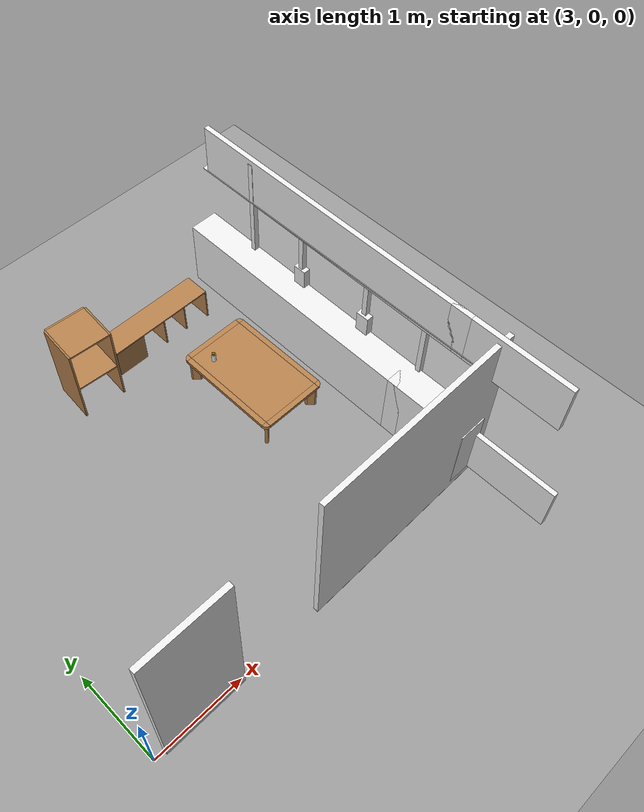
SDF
<sdf version="1.6">
 <world name="default">
  <model name="ground_plane">
   <static>1</static>
   <link name="link">
    <collision name="collision">
     <geometry><plane><normal>0 0 1</normal><size>100 100</size></plane></geometry>
     <surface><friction><ode><mu>100</mu><mu2>50</mu2></ode></friction></surface>
    </collision>
    <visual name="visual">
     <cast_shadows>0</cast_shadows>
     <geometry><plane><normal>0 0 1</normal><size>100 100</size></plane></geometry>
     <material>
      <script><uri>file://media/materials/scripts/gazebo.material</uri><name>Gazebo/Grey</name></script>
     </material>
    </visual>
   </link>
  </model>
  <model name="window">
   <link name="link">
    <pose>0 -1.45119 -0.459736 0 -0 0</pose>
    <inertial>
     <mass>74.704</mass>
     <inertia><ixx>0</ixx><ixy>0</ixy><ixz>0</ixz><iyy>0</iyy><iyz>0</iyz><izz>0</izz></inertia>
    </inertial>
    <velocity_decay><linear>0</linear><angular>0</angular></velocity_decay>
    <visual name="bottom_frame">
     <pose>0 0 0.05 0 -0 0</pose>
     <geometry><box><size>0.076062 3.6807 0.026221</size></box></geometry>
     <material>
      <script><uri>model://base_materials/color/scripts</uri><name>hsr_color/white</name></script>
      <ambient>1 1 1 1</ambient>
      <diffuse>0.5 0.5 0.5 1</diffuse>
      <specular>0 0 0 1</specular>
      <emissive>0 0 0 1</emissive>
     </material>
    </visual>
    <visual name="wall">
     <pose>0 0 0.4875 0 -0 0</pose>
     <geometry><box><size>0.076062 3.6807 0.209551</size></box></geometry>
     <material>
      <script>
       <uri>model://base_materials/wall/scripts</uri>
       <uri>model://base_materials/wall/textures</uri>
       <name>wall/white_noise</name>
      </script>
      <ambient>1 1 1 1</ambient>
      <diffuse>0.5 0.5 0.5 1</diffuse>
      <specular>0 0 0 1</specular>
      <emissive>0 0 0 1</emissive>
     </material>
    </visual>
    <visual name="right_frame">
     <pose>0 0.4325 1.48 0 -0 0</pose>
     <geometry><box><size>0.076062 0.143199 0.306613</size></box></geometry>
     <material>
      <script><uri>model://base_materials/color/scripts</uri><name>hsr_color/white</name></script>
      <ambient>1 1 1 1</ambient>
      <diffuse>0.5 0.5 0.5 1</diffuse>
      <specular>0 0 0 1</specular>
      <emissive>0 0 0 1</emissive>
     </material>
    </visual>
    <visual name="center_frame">
     <pose>0 0 0.8925 0 -0 0</pose>
     <geometry><box><size>0.076062 3.6807 0.006217</size></box></geometry>
     <material>
      <script><uri>model://base_materials/color/scripts</uri><name>hsr_color/white</name></script>
      <ambient>1 1 1 1</ambient>
      <diffuse>0.5 0.5 0.5 1</diffuse>
      <specular>0 0 0 1</specular>
      <emissive>0 0 0 1</emissive>
     </material>
    </visual>
    <visual name="left_frame">
     <pose>0 -0.4325 1.48 0 -0 0</pose>
     <geometry><box><size>0.076062 0.143199 0.306613</size></box></geometry>
     <material>
      <script><uri>model://base_materials/color/scripts</uri><name>hsr_color/white</name></script>
      <ambient>1 1 1 1</ambient>
      <diffuse>0.5 0.5 0.5 1</diffuse>
      <specular>0 0 0 1</specular>
      <emissive>0 0 0 1</emissive>
     </material>
    </visual>
    <visual name="top_frame">
     <pose>0 0 2.07 0 -0 0</pose>
     <geometry><box><size>0.076062 3.6807 0.008574</size></box></geometry>
     <material>
      <script><uri>model://base_materials/color/scripts</uri><name>hsr_color/white</name></script>
      <ambient>1 1 1 1</ambient>
      <diffuse>0.5 0.5 0.5 1</diffuse>
      <specular>0 0 0 1</specular>
      <emissive>0 0 0 1</emissive>
     </material>
    </visual>
    <collision name="collision_right_frame">
     <pose>0 0.4325 1.48 0 -0 0</pose>
     <geometry><box><size>0.076062 0.143199 0.306613</size></box></geometry>
     <surface>
      <friction>
       <ode><mu>1</mu><mu2>1</mu2><fdir1>0 0 0</fdir1><slip1>0</slip1><slip2>0</slip2></ode>
       <torsional>
        <coefficient>1</coefficient>
        <patch_radius>0</patch_radius>
        <surface_radius>0</surface_radius>
        <use_patch_radius>1</use_patch_radius>
        <ode><slip>0</slip></ode>
       </torsional>
      </friction>
      <bounce><restitution_coefficient>0</restitution_coefficient><threshold>1e+06</threshold></bounce>
      <contact>
       <collide_without_contact>0</collide_without_contact>
       <collide_without_contact_bitmask>1</collide_without_contact_bitmask>
       <collide_bitmask>1</collide_bitmask>
       <ode>
        <soft_cfm>0</soft_cfm>
        <soft_erp>0.2</soft_erp>
        <kp>1e+13</kp>
        <kd>1</kd>
        <max_vel>0.01</max_vel>
        <min_depth>0</min_depth>
       </ode>
       <bullet>
        <split_impulse>1</split_impulse>
        <split_impulse_penetration_threshold>-0.01</split_impulse_penetration_threshold>
        <soft_cfm>0</soft_cfm>
        <soft_erp>0.2</soft_erp>
        <kp>1e+13</kp>
        <kd>1</kd>
       </bullet>
      </contact>
     </surface>
    </collision>
    <collision name="collision_bottom_frame">
     <pose>0 0 0.05 0 -0 0</pose>
     <geometry><box><size>0.076062 3.6807 0.026221</size></box></geometry>
     <surface>
      <friction>
       <ode><mu>1</mu><mu2>1</mu2><fdir1>0 0 0</fdir1><slip1>0</slip1><slip2>0</slip2></ode>
       <torsional>
        <coefficient>1</coefficient>
        <patch_radius>0</patch_radius>
        <surface_radius>0</surface_radius>
        <use_patch_radius>1</use_patch_radius>
        <ode><slip>0</slip></ode>
       </torsional>
      </friction>
      <bounce><restitution_coefficient>0</restitution_coefficient><threshold>1e+06</threshold></bounce>
      <contact>
       <collide_without_contact>0</collide_without_contact>
       <collide_without_contact_bitmask>1</collide_without_contact_bitmask>
       <collide_bitmask>1</collide_bitmask>
       <ode>
        <soft_cfm>0</soft_cfm>
        <soft_erp>0.2</soft_erp>
        <kp>1e+13</kp>
        <kd>1</kd>
        <max_vel>0.01</max_vel>
        <min_depth>0</min_depth>
       </ode>
       <bullet>
        <split_impulse>1</split_impulse>
        <split_impulse_penetration_threshold>-0.01</split_impulse_penetration_threshold>
        <soft_cfm>0</soft_cfm>
        <soft_erp>0.2</soft_erp>
        <kp>1e+13</kp>
        <kd>1</kd>
       </bullet>
      </contact>
     </surface>
    </collision>
    <collision name="collision_wall">
     <pose>0 0 0.4875 0 -0 0</pose>
     <geometry><box><size>0.076062 3.6807 0.209551</size></box></geometry>
     <surface>
      <friction>
       <ode><mu>1</mu><mu2>1</mu2><fdir1>0 0 0</fdir1><slip1>0</slip1><slip2>0</slip2></ode>
       <torsional>
        <coefficient>1</coefficient>
        <patch_radius>0</patch_radius>
        <surface_radius>0</surface_radius>
        <use_patch_radius>1</use_patch_radius>
        <ode><slip>0</slip></ode>
       </torsional>
      </friction>
      <bounce><restitution_coefficient>0</restitution_coefficient><threshold>1e+06</threshold></bounce>
      <contact>
       <collide_without_contact>0</collide_without_contact>
       <collide_without_contact_bitmask>1</collide_without_contact_bitmask>
       <collide_bitmask>1</collide_bitmask>
       <ode>
        <soft_cfm>0</soft_cfm>
        <soft_erp>0.2</soft_erp>
        <kp>1e+13</kp>
        <kd>1</kd>
        <max_vel>0.01</max_vel>
        <min_depth>0</min_depth>
       </ode>
       <bullet>
        <split_impulse>1</split_impulse>
        <split_impulse_penetration_threshold>-0.01</split_impulse_penetration_threshold>
        <soft_cfm>0</soft_cfm>
        <soft_erp>0.2</soft_erp>
        <kp>1e+13</kp>
        <kd>1</kd>
       </bullet>
      </contact>
     </surface>
    </collision>
    <collision name="collision_center_frame">
     <pose>0 0 0.8925 0 -0 0</pose>
     <geometry><box><size>0.076062 3.6807 0.006217</size></box></geometry>
     <surface>
      <friction>
       <ode><mu>1</mu><mu2>1</mu2><fdir1>0 0 0</fdir1><slip1>0</slip1><slip2>0</slip2></ode>
       <torsional>
        <coefficient>1</coefficient>
        <patch_radius>0</patch_radius>
        <surface_radius>0</surface_radius>
        <use_patch_radius>1</use_patch_radius>
        <ode><slip>0</slip></ode>
       </torsional>
      </friction>
      <bounce><restitution_coefficient>0</restitution_coefficient><threshold>1e+06</threshold></bounce>
      <contact>
       <collide_without_contact>0</collide_without_contact>
       <collide_without_contact_bitmask>1</collide_without_contact_bitmask>
       <collide_bitmask>1</collide_bitmask>
       <ode>
        <soft_cfm>0</soft_cfm>
        <soft_erp>0.2</soft_erp>
        <kp>1e+13</kp>
        <kd>1</kd>
        <max_vel>0.01</max_vel>
        <min_depth>0</min_depth>
       </ode>
       <bullet>
        <split_impulse>1</split_impulse>
        <split_impulse_penetration_threshold>-0.01</split_impulse_penetration_threshold>
        <soft_cfm>0</soft_cfm>
        <soft_erp>0.2</soft_erp>
        <kp>1e+13</kp>
        <kd>1</kd>
       </bullet>
      </contact>
     </surface>
    </collision>
    <collision name="collision_left_frame">
     <pose>0 -0.4325 1.48 0 -0 0</pose>
     <geometry><box><size>0.076062 0.143199 0.306613</size></box></geometry>
     <surface>
      <friction>
       <ode><mu>1</mu><mu2>1</mu2><fdir1>0 0 0</fdir1><slip1>0</slip1><slip2>0</slip2></ode>
       <torsional>
        <coefficient>1</coefficient>
        <patch_radius>0</patch_radius>
        <surface_radius>0</surface_radius>
        <use_patch_radius>1</use_patch_radius>
        <ode><slip>0</slip></ode>
       </torsional>
      </friction>
      <bounce><restitution_coefficient>0</restitution_coefficient><threshold>1e+06</threshold></bounce>
      <contact>
       <collide_without_contact>0</collide_without_contact>
       <collide_without_contact_bitmask>1</collide_without_contact_bitmask>
       <collide_bitmask>1</collide_bitmask>
       <ode>
        <soft_cfm>0</soft_cfm>
        <soft_erp>0.2</soft_erp>
        <kp>1e+13</kp>
        <kd>1</kd>
        <max_vel>0.01</max_vel>
        <min_depth>0</min_depth>
       </ode>
       <bullet>
        <split_impulse>1</split_impulse>
        <split_impulse_penetration_threshold>-0.01</split_impulse_penetration_threshold>
        <soft_cfm>0</soft_cfm>
        <soft_erp>0.2</soft_erp>
        <kp>1e+13</kp>
        <kd>1</kd>
       </bullet>
      </contact>
     </surface>
    </collision>
    <collision name="collision_top_frame">
     <pose>0 0 2.07 0 -0 0</pose>
     <geometry><box><size>0.076062 3.6807 0.008574</size></box></geometry>
     <surface>
      <friction>
       <ode><mu>1</mu><mu2>1</mu2><fdir1>0 0 0</fdir1><slip1>0</slip1><slip2>0</slip2></ode>
       <torsional>
        <coefficient>1</coefficient>
        <patch_radius>0</patch_radius>
        <surface_radius>0</surface_radius>
        <use_patch_radius>1</use_patch_radius>
        <ode><slip>0</slip></ode>
       </torsional>
      </friction>
      <bounce><restitution_coefficient>0</restitution_coefficient><threshold>1e+06</threshold></bounce>
      <contact>
       <collide_without_contact>0</collide_without_contact>
       <collide_without_contact_bitmask>1</collide_without_contact_bitmask>
       <collide_bitmask>1</collide_bitmask>
       <ode>
        <soft_cfm>0</soft_cfm>
        <soft_erp>0.2</soft_erp>
        <kp>1e+13</kp>
        <kd>1</kd>
        <max_vel>0.01</max_vel>
        <min_depth>0</min_depth>
       </ode>
       <bullet>
        <split_impulse>1</split_impulse>
        <split_impulse_penetration_threshold>-0.01</split_impulse_penetration_threshold>
        <soft_cfm>0</soft_cfm>
        <soft_erp>0.2</soft_erp>
        <kp>1e+13</kp>
        <kd>1</kd>
       </bullet>
      </contact>
     </surface>
    </collision>
   </link>
   <static>1</static>
   <pose>7.07328 3.36168 0 0 -0 0</pose>
  </model>
  <model name="full_wall_55_900_2090_1_clone_0">
   <link name="link">
    <inertial>
     <mass>50</mass>
     <inertia><ixx>1</ixx><ixy>0</ixy><ixz>0</ixz><iyy>1</iyy><iyz>0</iyz><izz>1</izz></inertia>
    </inertial>
    <visual name="bottom_frame">
     <pose>0 0 0.05 0 -0 0</pose>
     <geometry><box><size>0.055 0.9 0.1</size></box></geometry>
     <material>
      <script><uri>model://base_materials/color/scripts</uri><name>hsr_color/white</name></script>
     </material>
    </visual>
    <collision name="collision_bottom_frame">
     <pose>0 0 0.05 0 -0 0</pose>
     <geometry><box><size>0.055 0.9 0.1</size></box></geometry>
    </collision>
    <visual name="wall">
     <pose>0 0 1.095 0 -0 0</pose>
     <geometry><box><size>0.055 0.9 1.99</size></box></geometry>
     <material>
      <script>
       <uri>model://base_materials/wall/scripts</uri>
       <uri>model://base_materials/wall/textures</uri>
       <name>wall/white_noise</name>
      </script>
     </material>
    </visual>
    <collision name="collision_wall">
     <pose>0 0 1.095 0 -0 0</pose>
     <geometry><box><size>0.055 0.9 1.99</size></box></geometry>
    </collision>
    <velocity_decay><linear>0</linear><angular>0</angular></velocity_decay>
   </link>
   <static>1</static>
   <pose>3.55507 -0.024236 -0.016667 0 -0 1.5708</pose>
  </model>
  <model name="full_wall_bedroom_dinning">
   <link name="link">
    <pose>-0 -0.606378 0 0 -0 0</pose>
    <inertial>
     <mass>128.04</mass>
     <inertia><ixx>0</ixx><ixy>0</ixy><ixz>0</ixz><iyy>0</iyy><iyz>0</iyz><izz>0</izz></inertia>
    </inertial>
    <velocity_decay><linear>0</linear><angular>0</angular></velocity_decay>
    <visual name="bottom_frame">
     <pose>0 0 0.05 0 -0 0</pose>
     <geometry><box><size>0.055 2.30472 0.1</size></box></geometry>
     <material>
      <script><uri>model://base_materials/color/scripts</uri><name>hsr_color/white</name></script>
      <ambient>1 1 1 1</ambient>
      <diffuse>0.5 0.5 0.5 1</diffuse>
      <specular>0 0 0 1</specular>
      <emissive>0 0 0 1</emissive>
     </material>
    </visual>
    <visual name="wall">
     <pose>0 0 1.095 0 -0 0</pose>
     <geometry><box><size>0.055 2.30472 1.99</size></box></geometry>
     <material>
      <script>
       <uri>model://base_materials/wall/scripts</uri>
       <uri>model://base_materials/wall/textures</uri>
       <name>wall/white_noise</name>
      </script>
      <ambient>1 1 1 1</ambient>
      <diffuse>0.5 0.5 0.5 1</diffuse>
      <specular>0 0 0 1</specular>
      <emissive>0 0 0 1</emissive>
     </material>
    </visual>
    <collision name="collision_bottom_frame">
     <pose>0 0 0.05 0 -0 0</pose>
     <geometry><box><size>0.055 2.30472 0.1</size></box></geometry>
     <surface>
      <friction>
       <ode><mu>1</mu><mu2>1</mu2><fdir1>0 0 0</fdir1><slip1>0</slip1><slip2>0</slip2></ode>
       <torsional>
        <coefficient>1</coefficient>
        <patch_radius>0</patch_radius>
        <surface_radius>0</surface_radius>
        <use_patch_radius>1</use_patch_radius>
        <ode><slip>0</slip></ode>
       </torsional>
      </friction>
      <bounce><restitution_coefficient>0</restitution_coefficient><threshold>1e+06</threshold></bounce>
      <contact>
       <collide_without_contact>0</collide_without_contact>
       <collide_without_contact_bitmask>1</collide_without_contact_bitmask>
       <collide_bitmask>1</collide_bitmask>
       <ode>
        <soft_cfm>0</soft_cfm>
        <soft_erp>0.2</soft_erp>
        <kp>1e+13</kp>
        <kd>1</kd>
        <max_vel>0.01</max_vel>
        <min_depth>0</min_depth>
       </ode>
       <bullet>
        <split_impulse>1</split_impulse>
        <split_impulse_penetration_threshold>-0.01</split_impulse_penetration_threshold>
        <soft_cfm>0</soft_cfm>
        <soft_erp>0.2</soft_erp>
        <kp>1e+13</kp>
        <kd>1</kd>
       </bullet>
      </contact>
     </surface>
    </collision>
    <collision name="collision_wall">
     <pose>0 0 1.095 0 -0 0</pose>
     <geometry><box><size>0.055 2.30472 1.99</size></box></geometry>
     <surface>
      <friction>
       <ode><mu>1</mu><mu2>1</mu2><fdir1>0 0 0</fdir1><slip1>0</slip1><slip2>0</slip2></ode>
       <torsional>
        <coefficient>1</coefficient>
        <patch_radius>0</patch_radius>
        <surface_radius>0</surface_radius>
        <use_patch_radius>1</use_patch_radius>
        <ode><slip>0</slip></ode>
       </torsional>
      </friction>
      <bounce><restitution_coefficient>0</restitution_coefficient><threshold>1e+06</threshold></bounce>
      <contact>
       <collide_without_contact>0</collide_without_contact>
       <collide_without_contact_bitmask>1</collide_without_contact_bitmask>
       <collide_bitmask>1</collide_bitmask>
       <ode>
        <soft_cfm>0</soft_cfm>
        <soft_erp>0.2</soft_erp>
        <kp>1e+13</kp>
        <kd>1</kd>
        <max_vel>0.01</max_vel>
        <min_depth>0</min_depth>
       </ode>
       <bullet>
        <split_impulse>1</split_impulse>
        <split_impulse_penetration_threshold>-0.01</split_impulse_penetration_threshold>
        <soft_cfm>0</soft_cfm>
        <soft_erp>0.2</soft_erp>
        <kp>1e+13</kp>
        <kd>1</kd>
       </bullet>
      </contact>
     </surface>
    </collision>
   </link>
   <static>1</static>
   <pose>5.45612 -0.013844 -0.043333 0 -0 1.58042</pose>
  </model>
  <model name="up_wall_0_clone_0">
   <link name="link">
    <pose>0 0.208482 0 0 -0 0</pose>
    <inertial>
     <mass>50</mass>
     <inertia><ixx>1</ixx><ixy>0</ixy><ixz>0</ixz><iyy>1</iyy><iyz>0</iyz><izz>1</izz></inertia>
    </inertial>
    <velocity_decay><linear>0</linear><angular>0</angular></velocity_decay>
    <visual name="bottom_frame">
     <pose>0 0 0.05 0 -0 0</pose>
     <geometry><box><size>0.055 0.551713 0.234857</size></box></geometry>
     <material>
      <script><uri>model://base_materials/color/scripts</uri><name>hsr_color/white</name></script>
      <ambient>1 1 1 1</ambient>
      <diffuse>0.5 0.5 0.5 1</diffuse>
      <specular>0 0 0 1</specular>
      <emissive>0 0 0 1</emissive>
     </material>
    </visual>
    <visual name="wall">
     <pose>0 0 1.095 0 -0 0</pose>
     <geometry><box><size>0.055 0.551713 4.66294</size></box></geometry>
     <material>
      <script>
       <uri>model://base_materials/wall/scripts</uri>
       <uri>model://base_materials/wall/textures</uri>
       <name>wall/white_noise</name>
      </script>
      <ambient>1 1 1 1</ambient>
      <diffuse>0.5 0.5 0.5 1</diffuse>
      <specular>0 0 0 1</specular>
      <emissive>0 0 0 1</emissive>
     </material>
    </visual>
   </link>
   <static>1</static>
   <pose>7.0679 0.282367 0.6367 -1.56017 0 0</pose>
  </model>
  <model name="tvboard">
   <link name="link">
    <inertial>
     <mass>50</mass>
     <inertia><ixx>1</ixx><ixy>0</ixy><ixz>0</ixz><iyy>1</iyy><iyz>0</iyz><izz>1</izz></inertia>
    </inertial>
    <visual name="left_board">
     <pose>-0.145 0.0085 -0.6175 0 -0 0</pose>
     <geometry><box><size>0.29 0.017 1.2315</size></box></geometry>
     <material>
      <script><uri>model://base_materials/wood/scripts/wood.material</uri><name>base_materials/wood</name></script>
     </material>
    </visual>
    <collision name="collision_left_board">
     <pose>-0.145 0.0085 -0.6175 0 -0 0</pose>
     <geometry><box><size>0.29 0.017 1.2315</size></box></geometry>
    </collision>
    <visual name="right_board">
     <pose>-0.145 0.4405 -0.61575 0 -0 0</pose>
     <geometry><box><size>0.29 0.017 1.2315</size></box></geometry>
     <material>
      <script><uri>model://base_materials/wood/scripts/wood.material</uri><name>base_materials/wood</name></script>
     </material>
    </visual>
    <collision name="collision_right_board">
     <pose>-0.145 0.4405 -0.61575 0 -0 0</pose>
     <geometry><box><size>0.29 0.017 1.2315</size></box></geometry>
    </collision>
    <visual name="top_board">
     <pose>-0.145 0.2245 -0.0085 0 -0 0</pose>
     <geometry><box><size>0.29 0.415 0.017</size></box></geometry>
     <material>
      <script><uri>model://base_materials/wood/scripts/wood.material</uri><name>base_materials/wood</name></script>
     </material>
    </visual>
    <collision name="collision_top_board">
     <pose>-0.145 0.2245 -0.0085 0 -0 0</pose>
     <geometry><box><size>0.29 0.415 0.017</size></box></geometry>
    </collision>
    <visual name="1st_shelf">
     <pose>-0.146 0.2245 -0.3035 0 -0 0</pose>
     <geometry><box><size>0.254 0.415 0.017</size></box></geometry>
     <material>
      <script><uri>model://base_materials/wood/scripts/wood.material</uri><name>base_materials/wood</name></script>
     </material>
    </visual>
    <collision name="collision_1st_shelf">
     <pose>-0.146 0.2245 -0.3035 0 -0 0</pose>
     <geometry><box><size>0.254 0.415 0.017</size></box></geometry>
    </collision>
    <visual name="2nd_shelf">
     <pose>-0.146 0.2245 -0.5845 0 -0 0</pose>
     <geometry><box><size>0.254 0.415 0.017</size></box></geometry>
     <material>
      <script><uri>model://base_materials/wood/scripts/wood.material</uri><name>base_materials/wood</name></script>
     </material>
    </visual>
    <collision name="collision_2nd_shelf">
     <pose>-0.146 0.2245 -0.5845 0 -0 0</pose>
     <geometry><box><size>0.254 0.415 0.017</size></box></geometry>
    </collision>
    <visual name="bottom_board">
     <pose>-0.148 0.2245 -1.04775 0 -0 0</pose>
     <geometry><box><size>0.254 0.415 0.3675</size></box></geometry>
     <material>
      <script><uri>model://base_materials/wood/scripts/wood.material</uri><name>base_materials/wood</name></script>
     </material>
    </visual>
    <collision name="collision_bottom_board">
     <pose>-0.148 0.2245 -1.04775 0 -0 0</pose>
     <geometry><box><size>0.254 0.415 0.3675</size></box></geometry>
    </collision>
    <visual name="back_board">
     <pose>-0.2815 0.2245 -0.61575 0 -0 0</pose>
     <geometry><box><size>0.017 0.415 1.2315</size></box></geometry>
     <material>
      <script><uri>model://base_materials/wood/scripts/wood.material</uri><name>base_materials/wood</name></script>
     </material>
    </visual>
    <collision name="collision_back_board">
     <pose>-0.2815 0.2245 -0.61575 0 -0 0</pose>
     <geometry><box><size>0.017 0.415 1.2315</size></box></geometry>
    </collision>
    <velocity_decay><linear>0</linear><angular>0</angular></velocity_decay>
   </link>
   <static>1</static>
   <pose>6.56058 3.30914 0.44467 -1.56862 -0.004975 -1.57224</pose>
  </model>
  <model name="ground_plane_0">
   <static>1</static>
   <link name="link">
    <collision name="collision">
     <geometry><plane><normal>0 0 1</normal><size>100 100</size></plane></geometry>
     <surface><friction><ode><mu>100</mu><mu2>50</mu2></ode></friction></surface>
    </collision>
    <visual name="visual">
     <cast_shadows>0</cast_shadows>
     <geometry><plane><normal>0 0 1</normal><size>100 100</size></plane></geometry>
     <material>
      <script><uri>file://media/materials/scripts/gazebo.material</uri><name>Gazebo/Grey</name></script>
     </material>
    </visual>
   </link>
   <pose>4.49109 2.10937 0 0 -0 0</pose>
  </model>
  <model name="kitchen_lowtable">
   <link name="link">
    <inertial>
     <mass>10</mass>
     <inertia><ixx>1</ixx><ixy>0</ixy><ixz>0</ixz><iyy>1</iyy><iyz>0</iyz><izz>1</izz></inertia>
    </inertial>
    <visual name="center_board">
     <pose>0 0 0.38 0 -0 0</pose>
     <geometry><box><size>0.68 1.13 0.04</size></box></geometry>
     <material>
      <script><uri>model://base_materials/wood/scripts/wood.material</uri><name>base_materials/wood</name></script>
     </material>
    </visual>
    <collision name="collision_center_board">
     <pose>0 0 0.38 0 -0 0</pose>
     <geometry><box><size>0.68 1.13 0.04</size></box></geometry>
    </collision>
    <visual name="front_board">
     <pose>0.37 0 0.38 0 -0 0</pose>
     <geometry><box><size>0.06 1.13 0.04</size></box></geometry>
     <material>
      <script><uri>model://base_materials/wood/scripts/wood.material</uri><name>base_materials/wood</name></script>
     </material>
    </visual>
    <collision name="collision_front_board">
     <pose>0.37 0 0.38 0 -0 0</pose>
     <geometry><box><size>0.06 1.13 0.04</size></box></geometry>
    </collision>
    <visual name="back_board">
     <pose>-0.37 0 0.38 0 -0 0</pose>
     <geometry><box><size>0.06 1.13 0.04</size></box></geometry>
     <material>
      <script><uri>model://base_materials/wood/scripts/wood.material</uri><name>base_materials/wood</name></script>
     </material>
    </visual>
    <collision name="collision_back_board">
     <pose>-0.37 0 0.38 0 -0 0</pose>
     <geometry><box><size>0.06 1.13 0.04</size></box></geometry>
    </collision>
    <visual name="right_board">
     <pose>0 0.595 0.38 0 -0 0</pose>
     <geometry><box><size>0.68 0.06 0.04</size></box></geometry>
     <material>
      <script><uri>model://base_materials/wood/scripts/wood.material</uri><name>base_materials/wood</name></script>
     </material>
    </visual>
    <collision name="collision_right_board">
     <pose>0 0.595 0.38 0 -0 0</pose>
     <geometry><box><size>0.68 0.06 0.04</size></box></geometry>
    </collision>
    <visual name="left_board">
     <pose>0 -0.595 0.38 0 -0 0</pose>
     <geometry><box><size>0.68 0.06 0.04</size></box></geometry>
     <material>
      <script><uri>model://base_materials/wood/scripts/wood.material</uri><name>base_materials/wood</name></script>
     </material>
    </visual>
    <collision name="collision_left_board">
     <pose>0 -0.595 0.38 0 -0 0</pose>
     <geometry><box><size>0.68 0.06 0.04</size></box></geometry>
    </collision>
    <visual name="front_right_corner_board">
     <pose>0.34 0.565 0.38 0 -0 0</pose>
     <geometry><cylinder><radius>0.06</radius><length>0.039</length></cylinder></geometry>
     <material>
      <script><uri>model://base_materials/wood/scripts/wood.material</uri><name>base_materials/wood</name></script>
     </material>
    </visual>
    <collision name="collision_front_right_corner_board">
     <pose>0.34 0.565 0.38 0 -0 0</pose>
     <geometry><cylinder><radius>0.06</radius><length>0.039</length></cylinder></geometry>
    </collision>
    <visual name="front_left_corner_board">
     <pose>0.34 -0.565 0.38 0 -0 0</pose>
     <geometry><cylinder><radius>0.06</radius><length>0.039</length></cylinder></geometry>
     <material>
      <script><uri>model://base_materials/wood/scripts/wood.material</uri><name>base_materials/wood</name></script>
     </material>
    </visual>
    <collision name="collision_front_left_corner_board">
     <pose>0.34 -0.565 0.38 0 -0 0</pose>
     <geometry><cylinder><radius>0.06</radius><length>0.039</length></cylinder></geometry>
    </collision>
    <visual name="front_back_right_corner_board">
     <pose>-0.34 0.565 0.38 0 -0 0</pose>
     <geometry><cylinder><radius>0.06</radius><length>0.039</length></cylinder></geometry>
     <material>
      <script><uri>model://base_materials/wood/scripts/wood.material</uri><name>base_materials/wood</name></script>
     </material>
    </visual>
    <collision name="collision_back_right_corner_board">
     <pose>-0.34 0.565 0.38 0 -0 0</pose>
     <geometry><cylinder><radius>0.06</radius><length>0.039</length></cylinder></geometry>
    </collision>
    <visual name="front_back_left_corner_board">
     <pose>-0.34 -0.565 0.38 0 -0 0</pose>
     <geometry><cylinder><radius>0.06</radius><length>0.039</length></cylinder></geometry>
     <material>
      <script><uri>model://base_materials/wood/scripts/wood.material</uri><name>base_materials/wood</name></script>
     </material>
    </visual>
    <collision name="collision_back_left_corner_board">
     <pose>-0.34 -0.565 0.38 0 -0 0</pose>
     <geometry><cylinder><radius>0.06</radius><length>0.039</length></cylinder></geometry>
    </collision>
    <visual name="front_left_corner_frame1">
     <pose>0.345858 -0.57086 0.18 0 -0 0</pose>
     <geometry><cylinder><radius>0.02</radius><length>0.36</length></cylinder></geometry>
     <material>
      <script><uri>model://base_materials/wood/scripts/wood.material</uri><name>base_materials/wood</name></script>
     </material>
    </visual>
    <collision name="collision_front_left_corner_frame1">
     <pose>0.345858 -0.57086 0.18 0 -0 0</pose>
     <geometry><cylinder><radius>0.02</radius><length>0.36</length></cylinder></geometry>
    </collision>
    <visual name="front_left_corner_frame2">
     <pose>0.317574 -0.54257 0.18 0 -0 0.7854</pose>
     <geometry><box><size>0.04 0.08 0.36</size></box></geometry>
     <material>
      <script><uri>model://base_materials/wood/scripts/wood.material</uri><name>base_materials/wood</name></script>
     </material>
    </visual>
    <collision name="collision_front_left_corner_frame2">
     <pose>0.317574 -0.54257 0.18 0 -0 0.7854</pose>
     <geometry><box><size>0.04 0.08 0.36</size></box></geometry>
    </collision>
    <visual name="front_left_corner_frame3">
     <pose>0.289289 -0.51429 0.18 0 -0 0</pose>
     <geometry><cylinder><radius>0.02</radius><length>0.36</length></cylinder></geometry>
     <material>
      <script><uri>model://base_materials/wood/scripts/wood.material</uri><name>base_materials/wood</name></script>
     </material>
    </visual>
    <collision name="collision_front_left_corner_frame3">
     <pose>0.289289 -0.51429 0.18 0 -0 0</pose>
     <geometry><cylinder><radius>0.02</radius><length>0.36</length></cylinder></geometry>
    </collision>
    <visual name="front_right_corner_frame1">
     <pose>0.345858 0.57086 0.18 0 -0 0</pose>
     <geometry><cylinder><radius>0.02</radius><length>0.36</length></cylinder></geometry>
     <material>
      <script><uri>model://base_materials/wood/scripts/wood.material</uri><name>base_materials/wood</name></script>
     </material>
    </visual>
    <collision name="collision_front_right_corner_frame1">
     <pose>0.345858 0.57086 0.18 0 -0 0</pose>
     <geometry><cylinder><radius>0.02</radius><length>0.36</length></cylinder></geometry>
    </collision>
    <visual name="front_right_corner_frame2">
     <pose>0.317574 0.54257 0.18 0 0 -0.7854</pose>
     <geometry><box><size>0.04 0.08 0.36</size></box></geometry>
     <material>
      <script><uri>model://base_materials/wood/scripts/wood.material</uri><name>base_materials/wood</name></script>
     </material>
    </visual>
    <collision name="collision_front_right_corner_frame2">
     <pose>0.317574 0.54257 0.18 0 0 -0.7854</pose>
     <geometry><box><size>0.04 0.08 0.36</size></box></geometry>
    </collision>
    <visual name="front_right_corner_frame3">
     <pose>0.289289 0.51429 0.18 0 -0 0</pose>
     <geometry><cylinder><radius>0.02</radius><length>0.36</length></cylinder></geometry>
     <material>
      <script><uri>model://base_materials/wood/scripts/wood.material</uri><name>base_materials/wood</name></script>
     </material>
    </visual>
    <collision name="collision_front_right_corner_frame3">
     <pose>0.289289 0.51429 0.18 0 -0 0</pose>
     <geometry><cylinder><radius>0.02</radius><length>0.36</length></cylinder></geometry>
    </collision>
    <visual name="back_left_corner_frame1">
     <pose>-0.345858 -0.57086 0.18 0 -0 0</pose>
     <geometry><cylinder><radius>0.02</radius><length>0.36</length></cylinder></geometry>
     <material>
      <script><uri>model://base_materials/wood/scripts/wood.material</uri><name>base_materials/wood</name></script>
     </material>
    </visual>
    <collision name="collision_back_left_corner_frame1">
     <pose>-0.345858 -0.57086 0.18 0 -0 0</pose>
     <geometry><cylinder><radius>0.02</radius><length>0.36</length></cylinder></geometry>
    </collision>
    <visual name="back_left_corner_frame2">
     <pose>-0.317574 -0.54257 0.18 0 0 -0.7854</pose>
     <geometry><box><size>0.04 0.08 0.36</size></box></geometry>
     <material>
      <script><uri>model://base_materials/wood/scripts/wood.material</uri><name>base_materials/wood</name></script>
     </material>
    </visual>
    <collision name="collision_back_left_corner_frame2">
     <pose>-0.317574 -0.54257 0.18 0 0 -0.7854</pose>
     <geometry><box><size>0.04 0.08 0.36</size></box></geometry>
    </collision>
    <visual name="back_left_corner_frame3">
     <pose>-0.289289 -0.51429 0.18 0 -0 0</pose>
     <geometry><cylinder><radius>0.02</radius><length>0.36</length></cylinder></geometry>
     <material>
      <script><uri>model://base_materials/wood/scripts/wood.material</uri><name>base_materials/wood</name></script>
     </material>
    </visual>
    <collision name="collision_back_left_corner_frame3">
     <pose>-0.289289 -0.51429 0.18 0 -0 0</pose>
     <geometry><cylinder><radius>0.02</radius><length>0.36</length></cylinder></geometry>
    </collision>
    <visual name="back_right_corner_frame1">
     <pose>-0.345858 0.57086 0.18 0 -0 0</pose>
     <geometry><cylinder><radius>0.02</radius><length>0.36</length></cylinder></geometry>
     <material>
      <script><uri>model://base_materials/wood/scripts/wood.material</uri><name>base_materials/wood</name></script>
     </material>
    </visual>
    <collision name="collision_back_right_corner_frame1">
     <pose>-0.345858 0.57086 0.18 0 -0 0</pose>
     <geometry><cylinder><radius>0.02</radius><length>0.36</length></cylinder></geometry>
    </collision>
    <visual name="back_right_corner_frame2">
     <pose>-0.317574 0.54257 0.18 0 -0 0.7854</pose>
     <geometry><box><size>0.04 0.08 0.36</size></box></geometry>
     <material>
      <script><uri>model://base_materials/wood/scripts/wood.material</uri><name>base_materials/wood</name></script>
     </material>
    </visual>
    <collision name="collision_back_right_corner_frame2">
     <pose>-0.317574 0.54257 0.18 0 -0 0.7854</pose>
     <geometry><box><size>0.04 0.08 0.36</size></box></geometry>
    </collision>
    <visual name="back_right_corner_frame3">
     <pose>-0.289289 0.51429 0.18 0 -0 0</pose>
     <geometry><cylinder><radius>0.02</radius><length>0.36</length></cylinder></geometry>
     <material>
      <script><uri>model://base_materials/wood/scripts/wood.material</uri><name>base_materials/wood</name></script>
     </material>
    </visual>
    <collision name="collision_back_right_corner_frame3">
     <pose>-0.289289 0.51429 0.18 0 -0 0</pose>
     <geometry><cylinder><radius>0.02</radius><length>0.36</length></cylinder></geometry>
    </collision>
    <velocity_decay><linear>0</linear><angular>0</angular></velocity_decay>
   </link>
   <static>1</static>
   <pose>6.20424 2.18833 0 0 -0 0</pose>
  </model>
  <model name="cabinet">
   <static>1</static>
   <link name="cabinet_bottom_plate">
    <inertial>
     <pose>0 0 -1 0 -0 0</pose>
     <inertia><ixx>2.05</ixx><ixy>0</ixy><ixz>0</ixz><iyy>2.05</iyy><iyz>0</iyz><izz>2.05</izz></inertia>
     <mass>25</mass>
    </inertial>
    <collision name="cabinet_bottom_plate_geom">
     <pose>0 0 0.01 0 -0 0</pose>
     <geometry><box><size>0.45 0.45 0.02</size></box></geometry>
    </collision>
    <visual name="cabinet_bottom_plate_geom_visual">
     <pose>0 0 0.01 0 -0 0</pose>
     <geometry><box><size>0.45 0.45 0.02</size></box></geometry>
     <material>
      <script><uri>file://media/materials/scripts/gazebo.material</uri><name>Gazebo/Wood</name></script>
     </material>
    </visual>
    <collision name="cabinet_bottom_plate_geom_cabinet_back_plate">
     <pose>0.235 0 0.51 0 -0 0</pose>
     <geometry><box><size>0.02 0.45 1.02</size></box></geometry>
    </collision>
    <visual name="cabinet_bottom_plate_geom_cabinet_back_plate_visual">
     <pose>0.235 0 0.51 0 -0 0</pose>
     <geometry><box><size>0.02 0.45 1.02</size></box></geometry>
     <material>
      <script><uri>file://media/materials/scripts/gazebo.material</uri><name>Gazebo/Wood</name></script>
     </material>
    </visual>
    <collision name="cabinet_bottom_plate_geom_cabinet_left_plate">
     <pose>0 0.235 0.51 0 -0 0</pose>
     <geometry><box><size>0.45 0.02 1.02</size></box></geometry>
    </collision>
    <visual name="cabinet_bottom_plate_geom_cabinet_left_plate_visual">
     <pose>0 0.235 0.51 0 -0 0</pose>
     <geometry><box><size>0.45 0.02 1.02</size></box></geometry>
     <material>
      <script><uri>file://media/materials/scripts/gazebo.material</uri><name>Gazebo/Wood</name></script>
     </material>
    </visual>
    <collision name="cabinet_bottom_plate_geom_cabinet_middle_plate">
     <pose>0 0 0.51 0 -0 0</pose>
     <geometry><box><size>0.45 0.45 0.02</size></box></geometry>
    </collision>
    <visual name="cabinet_bottom_plate_geom_cabinet_middle_plate_visual">
     <pose>0 0 0.51 0 -0 0</pose>
     <geometry><box><size>0.45 0.45 0.02</size></box></geometry>
     <material>
      <script><uri>file://media/materials/scripts/gazebo.material</uri><name>Gazebo/Wood</name></script>
     </material>
    </visual>
    <collision name="cabinet_bottom_plate_geom_cabinet_right_plate">
     <pose>0 -0.235 0.51 0 -0 0</pose>
     <geometry><box><size>0.45 0.02 1.02</size></box></geometry>
    </collision>
    <visual name="cabinet_bottom_plate_geom_cabinet_right_plate_visual">
     <pose>0 -0.235 0.51 0 -0 0</pose>
     <geometry><box><size>0.45 0.02 1.02</size></box></geometry>
     <material>
      <script><uri>file://media/materials/scripts/gazebo.material</uri><name>Gazebo/Wood</name></script>
     </material>
    </visual>
    <collision name="cabinet_bottom_plate_geom_cabinet_top_plate">
     <pose>0 0 1.01 0 -0 0</pose>
     <geometry><box><size>0.45 0.45 0.02</size></box></geometry>
    </collision>
    <visual name="cabinet_bottom_plate_geom_cabinet_top_plate_visual">
     <pose>0 0 1.01 0 -0 0</pose>
     <geometry><box><size>0.45 0.45 0.02</size></box></geometry>
     <material>
      <script><uri>file://media/materials/scripts/gazebo.material</uri><name>Gazebo/Wood</name></script>
     </material>
    </visual>
   </link>
   <pose>4.99399 3.37512 0 0 -0 1.49641</pose>
  </model>
  <model name="wall_under_window">
   <link name="link">
    <pose>-1.16136 0.310894 0.451619 0 -0 0</pose>
    <inertial>
     <mass>50</mass>
     <inertia><ixx>1</ixx><ixy>0</ixy><ixz>0</ixz><iyy>1</iyy><iyz>0</iyz><izz>1</izz></inertia>
    </inertial>
    <velocity_decay><linear>0</linear><angular>0</angular></velocity_decay>
    <visual name="bottom_frame">
     <pose>0 0 0.05 0 -0 0</pose>
     <geometry><box><size>0.319933 0.784691 0.18978</size></box></geometry>
     <material>
      <script><uri>model://base_materials/color/scripts</uri><name>hsr_color/white</name></script>
      <ambient>1 1 1 1</ambient>
      <diffuse>0.5 0.5 0.5 1</diffuse>
      <specular>0 0 0 1</specular>
      <emissive>0 0 0 1</emissive>
     </material>
    </visual>
    <visual name="wall">
     <pose>0 0 1.095 0 -0 0</pose>
     <geometry><box><size>0.319933 0.784691 3.75641</size></box></geometry>
     <material>
      <script>
       <uri>model://base_materials/wall/scripts</uri>
       <uri>model://base_materials/wall/textures</uri>
       <name>wall/white_noise</name>
      </script>
      <ambient>1 1 1 1</ambient>
      <diffuse>0.5 0.5 0.5 1</diffuse>
      <specular>0 0 0 1</specular>
      <emissive>0 0 0 1</emissive>
     </material>
    </visual>
   </link>
   <static>1</static>
   <pose>8.10567 0.294781 0.848529 -1.56017 0 0</pose>
  </model>
  <model name="up_wall_0">
   <link name="link">
    <pose>0 0.208482 0.104132 0 -0 0</pose>
    <inertial>
     <mass>50</mass>
     <inertia><ixx>1</ixx><ixy>0</ixy><ixz>0</ixz><iyy>1</iyy><iyz>0</iyz><izz>1</izz></inertia>
    </inertial>
    <velocity_decay><linear>0</linear><angular>0</angular></velocity_decay>
    <visual name="wall">
     <pose>0 0 1.095 0 -0 0</pose>
     <geometry><box><size>0.055 0.551713 4.42823</size></box></geometry>
     <material>
      <script>
       <uri>model://base_materials/wall/scripts</uri>
       <uri>model://base_materials/wall/textures</uri>
       <name>wall/white_noise</name>
      </script>
      <ambient>1 1 1 1</ambient>
      <diffuse>0.5 0.5 0.5 1</diffuse>
      <specular>0 0 0 1</specular>
      <emissive>0 0 0 1</emissive>
     </material>
    </visual>
    <visual name="bottom_frame">
     <pose>0 0 0.05 0 -0 0</pose>
     <geometry><box><size>0.055 0.551713 0.223397</size></box></geometry>
     <material>
      <script><uri>model://base_materials/color/scripts</uri><name>hsr_color/white</name></script>
      <ambient>1 1 1 1</ambient>
      <diffuse>0.5 0.5 0.5 1</diffuse>
      <specular>0 0 0 1</specular>
      <emissive>0 0 0 1</emissive>
     </material>
    </visual>
   </link>
   <static>1</static>
   <pose>7.06926 0.268949 2.04807 -1.56017 0 0</pose>
  </model>
  <model name="small_bottle">
   <link name="link">
    <inertial>
     <mass>0.05</mass>
     <inertia><ixx>0.00058</ixx><ixy>0</ixy><ixz>0</ixz><iyy>0.00058</iyy><iyz>0</iyz><izz>0.00016</izz></inertia>
    </inertial>
    <visual name="top">
     <pose>0 0 0.0555 0 -0 0</pose>
     <geometry><cylinder><radius>0.019</radius><length>0.016</length></cylinder></geometry>
     <material>
      <ambient>1 0.647 0 1</ambient>
      <diffuse>0.5 0.3235 0 1</diffuse>
      <specular>0.1 0.1 0.1 1</specular>
      <emissive>0 0 0 0</emissive>
     </material>
    </visual>
    <collision name="collision_top">
     <pose>0 0 0.0555 0 -0 0</pose>
     <geometry><cylinder><radius>0.019</radius><length>0.016</length></cylinder></geometry>
     <surface>
      <bounce><restitution_coefficient>0.2</restitution_coefficient><threshold>0</threshold></bounce>
      <contact><ode><kp>10000</kp><max_vel>10</max_vel></ode></contact>
     </surface>
    </collision>
    <visual name="bottom">
     <geometry><cylinder><radius>0.0245</radius><length>0.095</length></cylinder></geometry>
     <material>
      <script><uri>model://base_materials/color/scripts</uri><name>hsr_color/white</name></script>
     </material>
    </visual>
    <collision name="collision_bottom">
     <geometry><cylinder><radius>0.0245</radius><length>0.095</length></cylinder></geometry>
     <surface>
      <bounce><restitution_coefficient>0.2</restitution_coefficient><threshold>0</threshold></bounce>
      <contact><ode><kp>100000</kp><max_vel>10</max_vel></ode></contact>
     </surface>
    </collision>
    <velocity_decay><linear>0</linear><angular>0</angular></velocity_decay>
   </link>
   <static>0</static>
   <pose>6.01501 2.56895 0.4475 6e-06 -4e-06 2e-06</pose>
  </model>
  <model name="wall_frame_55_55_2090_none_collision">
   <link name="link">
    <inertial>
     <mass>50</mass>
     <inertia><ixx>1</ixx><ixy>0</ixy><ixz>0</ixz><iyy>1</iyy><iyz>0</iyz><izz>1</izz></inertia>
    </inertial>
    <visual name="_frame">
     <pose>0 0 1.045 0 -0 0</pose>
     <geometry><box><size>0.055 0.055 2.09</size></box></geometry>
     <material>
      <script><uri>model://base_materials/color/scripts</uri><name>hsr_color/white</name></script>
     </material>
    </visual>
    <velocity_decay><linear>0</linear><angular>0</angular></velocity_decay>
   </link>
   <static>1</static>
   <pose>7.07813 2.34345 0 0 -0 0</pose>
  </model>
  <model name="wall_frame_55_55_2090_none_collision_clone">
   <link name="link">
    <inertial>
     <mass>50</mass>
     <inertia><ixx>1</ixx><ixy>0</ixy><ixz>0</ixz><iyy>1</iyy><iyz>0</iyz><izz>1</izz></inertia>
    </inertial>
    <visual name="_frame">
     <pose>0 0 1.045 0 -0 0</pose>
     <geometry><box><size>0.055 0.055 2.09</size></box></geometry>
     <material>
      <script><uri>model://base_materials/color/scripts</uri><name>hsr_color/white</name></script>
     </material>
    </visual>
    <velocity_decay><linear>0</linear><angular>0</angular></velocity_decay>
   </link>
   <static>1</static>
   <pose>7.08948 1.48511 0 0 -0 0</pose>
  </model>
  <model name="wall_frame_55_55_2090_none_collision_clone_clone">
   <link name="link">
    <inertial>
     <mass>50</mass>
     <inertia><ixx>1</ixx><ixy>0</ixy><ixz>0</ixz><iyy>1</iyy><iyz>0</iyz><izz>1</izz></inertia>
    </inertial>
    <visual name="_frame">
     <pose>0 0 1.045 0 -0 0</pose>
     <geometry><box><size>0.055 0.055 2.09</size></box></geometry>
     <material>
      <script><uri>model://base_materials/color/scripts</uri><name>hsr_color/white</name></script>
     </material>
    </visual>
    <velocity_decay><linear>0</linear><angular>0</angular></velocity_decay>
   </link>
   <static>1</static>
   <pose>7.09834 0.769572 0 0 -0 0</pose>
  </model>
  <model name="wall_frame_55_55_2090_none_collision_clone_clone_0">
   <link name="link">
    <inertial>
     <mass>50</mass>
     <inertia><ixx>1</ixx><ixy>0</ixy><ixz>0</ixz><iyy>1</iyy><iyz>0</iyz><izz>1</izz></inertia>
    </inertial>
    <visual name="_frame">
     <pose>0 0 1.045 0 -0 0</pose>
     <geometry><box><size>0.055 0.055 2.09</size></box></geometry>
     <material>
      <script><uri>model://base_materials/color/scripts</uri><name>hsr_color/white</name></script>
     </material>
    </visual>
    <velocity_decay><linear>0</linear><angular>0</angular></velocity_decay>
   </link>
   <static>1</static>
   <pose>7.0663 3.03182 0 0 -0 0</pose>
  </model>
 </world>
</sdf>
